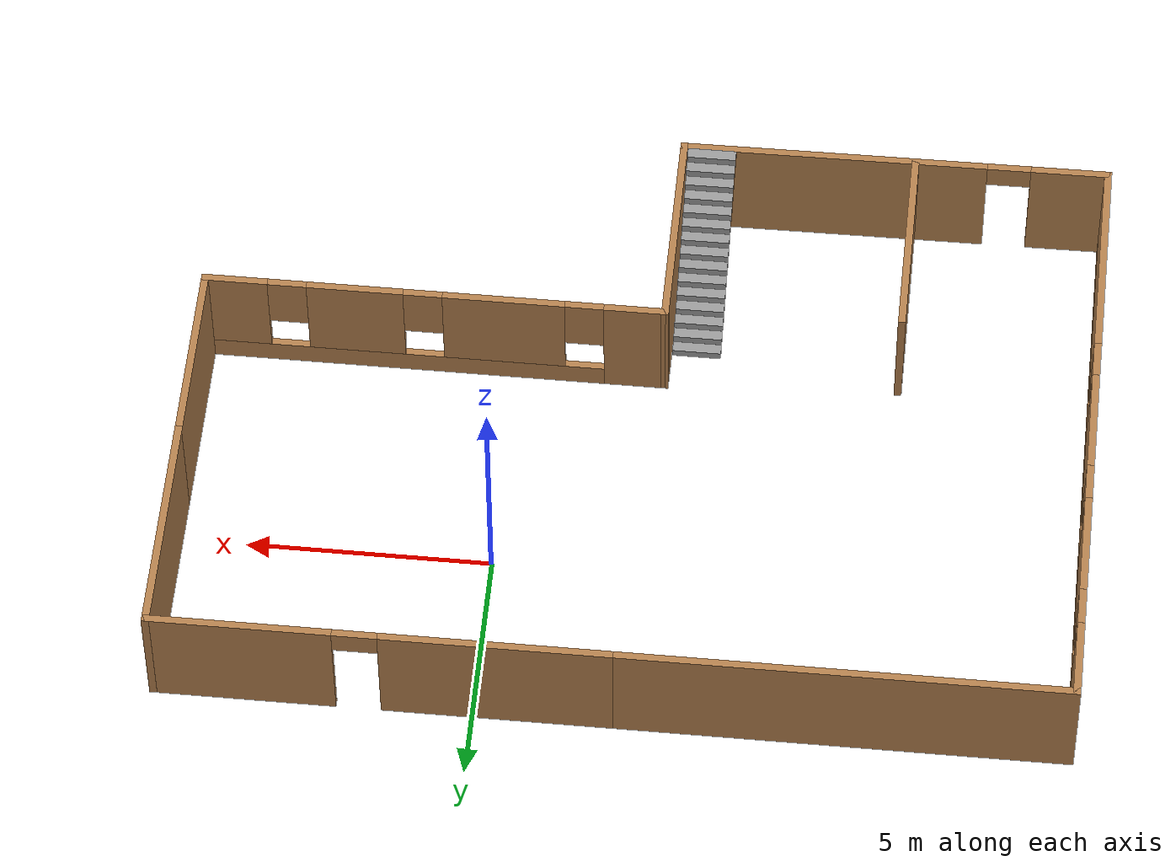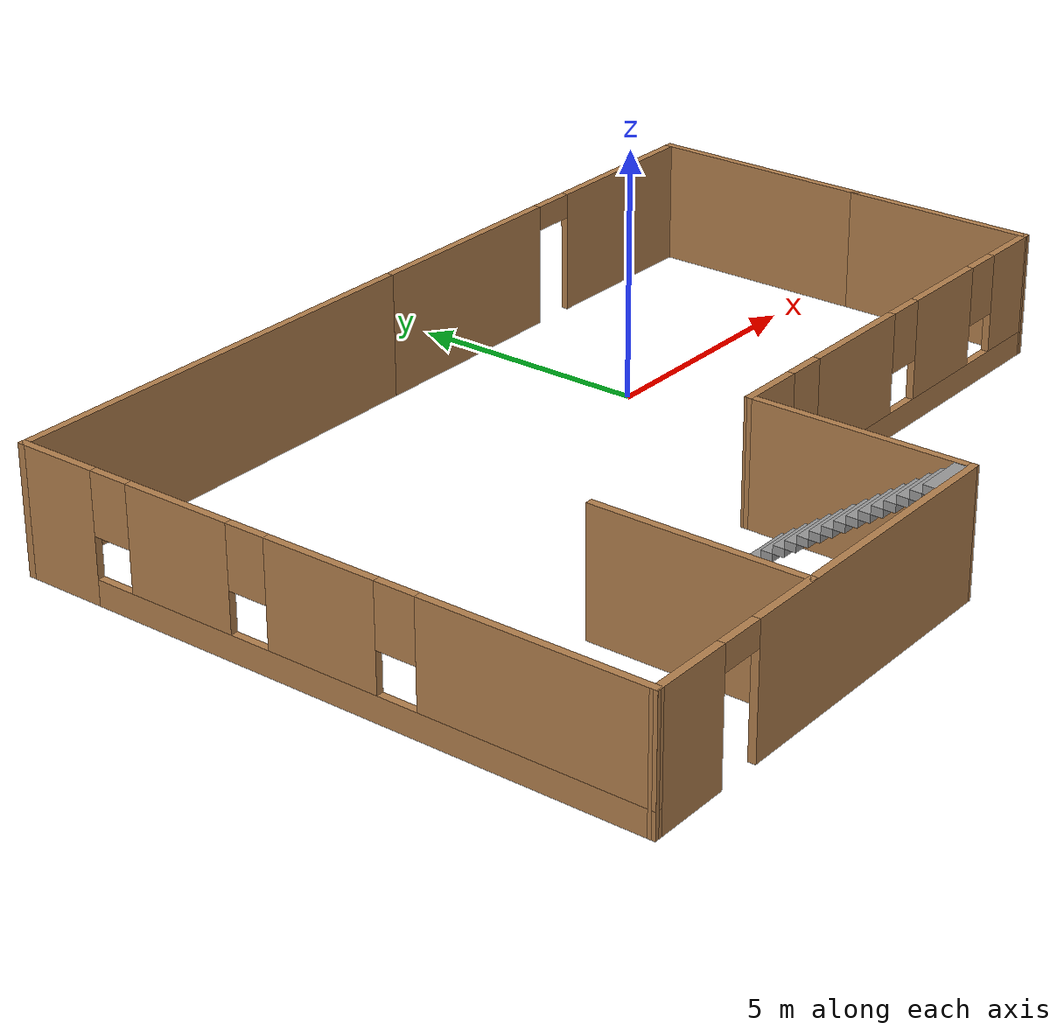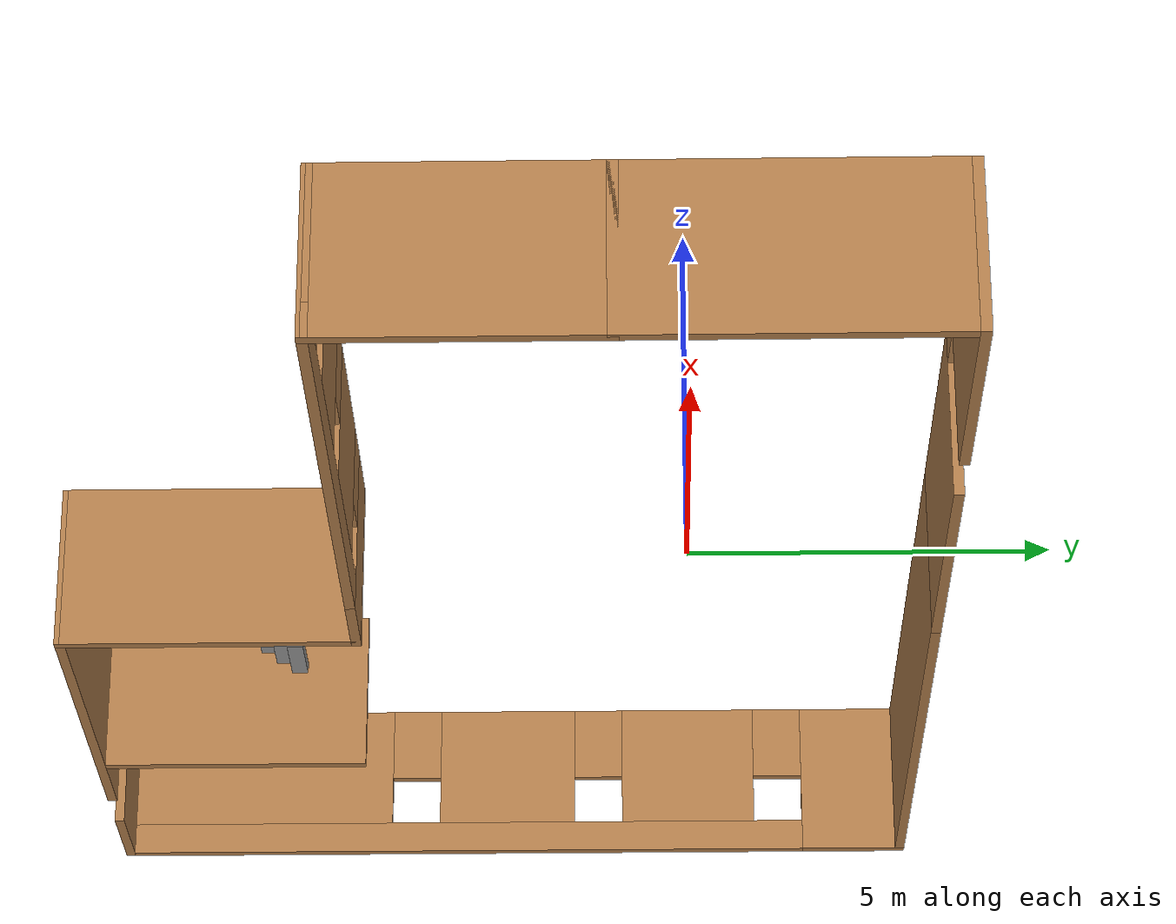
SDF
<?xml version='1.0'?>
<sdf version='1.6'>
  <model name='turtlebot_house'>
    <pose frame=''>-2.74021 -2.79523 0 0 -0 0</pose>
    <link name='Stairs_0'>
      <visual name='Stairs_0_Visual_0'>
        <pose frame=''>-0.902791 -2.92827 0.083333 0 -0 0</pose>
        <geometry>
          <box>
            <size>1 0.233333 0.166667</size>
          </box>
        </geometry>
        <material>
          <script>
            <uri>file://media/materials/scripts/gazebo.material</uri>
            <name>Gazebo/Grey</name>
          </script>
          <ambient>1 1 1 1</ambient>
        </material>
      </visual>
      <collision name='Stairs_0_Collision_0'>
        <geometry>
          <box>
            <size>1 0.233333 0.166667</size>
          </box>
        </geometry>
        <pose frame=''>-0.902791 -2.92827 0.083333 0 -0 0</pose>
      </collision>
      <visual name='Stairs_0_Visual_1'>
        <pose frame=''>-0.902791 -3.1616 0.25 0 -0 0</pose>
        <geometry>
          <box>
            <size>1 0.233333 0.166667</size>
          </box>
        </geometry>
        <material>
          <script>
            <uri>file://media/materials/scripts/gazebo.material</uri>
            <name>Gazebo/Grey</name>
          </script>
          <ambient>1 1 1 1</ambient>
        </material>
      </visual>
      <collision name='Stairs_0_Collision_1'>
        <geometry>
          <box>
            <size>1 0.233333 0.166667</size>
          </box>
        </geometry>
        <pose frame=''>-0.902791 -3.1616 0.25 0 -0 0</pose>
      </collision>
      <visual name='Stairs_0_Visual_2'>
        <pose frame=''>-0.902791 -3.39493 0.416667 0 -0 0</pose>
        <geometry>
          <box>
            <size>1 0.233333 0.166667</size>
          </box>
        </geometry>
        <material>
          <script>
            <uri>file://media/materials/scripts/gazebo.material</uri>
            <name>Gazebo/Grey</name>
          </script>
          <ambient>1 1 1 1</ambient>
        </material>
      </visual>
      <collision name='Stairs_0_Collision_2'>
        <geometry>
          <box>
            <size>1 0.233333 0.166667</size>
          </box>
        </geometry>
        <pose frame=''>-0.902791 -3.39493 0.416667 0 -0 0</pose>
      </collision>
      <visual name='Stairs_0_Visual_3'>
        <pose frame=''>-0.902791 -3.62826 0.583333 0 -0 0</pose>
        <geometry>
          <box>
            <size>1 0.233333 0.166667</size>
          </box>
        </geometry>
        <material>
          <script>
            <uri>file://media/materials/scripts/gazebo.material</uri>
            <name>Gazebo/Grey</name>
          </script>
          <ambient>1 1 1 1</ambient>
        </material>
      </visual>
      <collision name='Stairs_0_Collision_3'>
        <geometry>
          <box>
            <size>1 0.233333 0.166667</size>
          </box>
        </geometry>
        <pose frame=''>-0.902791 -3.62826 0.583333 0 -0 0</pose>
      </collision>
      <visual name='Stairs_0_Visual_4'>
        <pose frame=''>-0.902791 -3.8616 0.75 0 -0 0</pose>
        <geometry>
          <box>
            <size>1 0.233333 0.166667</size>
          </box>
        </geometry>
        <material>
          <script>
            <uri>file://media/materials/scripts/gazebo.material</uri>
            <name>Gazebo/Grey</name>
          </script>
          <ambient>1 1 1 1</ambient>
        </material>
      </visual>
      <collision name='Stairs_0_Collision_4'>
        <geometry>
          <box>
            <size>1 0.233333 0.166667</size>
          </box>
        </geometry>
        <pose frame=''>-0.902791 -3.8616 0.75 0 -0 0</pose>
      </collision>
      <visual name='Stairs_0_Visual_5'>
        <pose frame=''>-0.902791 -4.09493 0.916667 0 -0 0</pose>
        <geometry>
          <box>
            <size>1 0.233333 0.166667</size>
          </box>
        </geometry>
        <material>
          <script>
            <uri>file://media/materials/scripts/gazebo.material</uri>
            <name>Gazebo/Grey</name>
          </script>
          <ambient>1 1 1 1</ambient>
        </material>
      </visual>
      <collision name='Stairs_0_Collision_5'>
        <geometry>
          <box>
            <size>1 0.233333 0.166667</size>
          </box>
        </geometry>
        <pose frame=''>-0.902791 -4.09493 0.916667 0 -0 0</pose>
      </collision>
      <visual name='Stairs_0_Visual_6'>
        <pose frame=''>-0.902791 -4.32827 1.08333 0 -0 0</pose>
        <geometry>
          <box>
            <size>1 0.233333 0.166667</size>
          </box>
        </geometry>
        <material>
          <script>
            <uri>file://media/materials/scripts/gazebo.material</uri>
            <name>Gazebo/Grey</name>
          </script>
          <ambient>1 1 1 1</ambient>
        </material>
      </visual>
      <collision name='Stairs_0_Collision_6'>
        <geometry>
          <box>
            <size>1 0.233333 0.166667</size>
          </box>
        </geometry>
        <pose frame=''>-0.902791 -4.32827 1.08333 0 -0 0</pose>
      </collision>
      <visual name='Stairs_0_Visual_7'>
        <pose frame=''>-0.902791 -4.5616 1.25 0 -0 0</pose>
        <geometry>
          <box>
            <size>1 0.233333 0.166667</size>
          </box>
        </geometry>
        <material>
          <script>
            <uri>file://media/materials/scripts/gazebo.material</uri>
            <name>Gazebo/Grey</name>
          </script>
          <ambient>1 1 1 1</ambient>
        </material>
      </visual>
      <collision name='Stairs_0_Collision_7'>
        <geometry>
          <box>
            <size>1 0.233333 0.166667</size>
          </box>
        </geometry>
        <pose frame=''>-0.902791 -4.5616 1.25 0 -0 0</pose>
      </collision>
      <visual name='Stairs_0_Visual_8'>
        <pose frame=''>-0.902791 -4.79493 1.41667 0 -0 0</pose>
        <geometry>
          <box>
            <size>1 0.233333 0.166667</size>
          </box>
        </geometry>
        <material>
          <script>
            <uri>file://media/materials/scripts/gazebo.material</uri>
            <name>Gazebo/Grey</name>
          </script>
          <ambient>1 1 1 1</ambient>
        </material>
      </visual>
      <collision name='Stairs_0_Collision_8'>
        <geometry>
          <box>
            <size>1 0.233333 0.166667</size>
          </box>
        </geometry>
        <pose frame=''>-0.902791 -4.79493 1.41667 0 -0 0</pose>
      </collision>
      <visual name='Stairs_0_Visual_9'>
        <pose frame=''>-0.902791 -5.02827 1.58333 0 -0 0</pose>
        <geometry>
          <box>
            <size>1 0.233333 0.166667</size>
          </box>
        </geometry>
        <material>
          <script>
            <uri>file://media/materials/scripts/gazebo.material</uri>
            <name>Gazebo/Grey</name>
          </script>
          <ambient>1 1 1 1</ambient>
        </material>
      </visual>
      <collision name='Stairs_0_Collision_9'>
        <geometry>
          <box>
            <size>1 0.233333 0.166667</size>
          </box>
        </geometry>
        <pose frame=''>-0.902791 -5.02827 1.58333 0 -0 0</pose>
      </collision>
      <visual name='Stairs_0_Visual_10'>
        <pose frame=''>-0.902791 -5.2616 1.75 0 -0 0</pose>
        <geometry>
          <box>
            <size>1 0.233333 0.166667</size>
          </box>
        </geometry>
        <material>
          <script>
            <uri>file://media/materials/scripts/gazebo.material</uri>
            <name>Gazebo/Grey</name>
          </script>
          <ambient>1 1 1 1</ambient>
        </material>
      </visual>
      <collision name='Stairs_0_Collision_10'>
        <geometry>
          <box>
            <size>1 0.233333 0.166667</size>
          </box>
        </geometry>
        <pose frame=''>-0.902791 -5.2616 1.75 0 -0 0</pose>
      </collision>
      <visual name='Stairs_0_Visual_11'>
        <pose frame=''>-0.902791 -5.49493 1.91667 0 -0 0</pose>
        <geometry>
          <box>
            <size>1 0.233333 0.166667</size>
          </box>
        </geometry>
        <material>
          <script>
            <uri>file://media/materials/scripts/gazebo.material</uri>
            <name>Gazebo/Grey</name>
          </script>
          <ambient>1 1 1 1</ambient>
        </material>
      </visual>
      <collision name='Stairs_0_Collision_11'>
        <geometry>
          <box>
            <size>1 0.233333 0.166667</size>
          </box>
        </geometry>
        <pose frame=''>-0.902791 -5.49493 1.91667 0 -0 0</pose>
      </collision>
      <visual name='Stairs_0_Visual_12'>
        <pose frame=''>-0.902791 -5.72827 2.08333 0 -0 0</pose>
        <geometry>
          <box>
            <size>1 0.233333 0.166667</size>
          </box>
        </geometry>
        <material>
          <script>
            <uri>file://media/materials/scripts/gazebo.material</uri>
            <name>Gazebo/Grey</name>
          </script>
          <ambient>1 1 1 1</ambient>
        </material>
      </visual>
      <collision name='Stairs_0_Collision_12'>
        <geometry>
          <box>
            <size>1 0.233333 0.166667</size>
          </box>
        </geometry>
        <pose frame=''>-0.902791 -5.72827 2.08333 0 -0 0</pose>
      </collision>
      <visual name='Stairs_0_Visual_13'>
        <pose frame=''>-0.902791 -5.9616 2.25 0 -0 0</pose>
        <geometry>
          <box>
            <size>1 0.233333 0.166667</size>
          </box>
        </geometry>
        <material>
          <script>
            <uri>file://media/materials/scripts/gazebo.material</uri>
            <name>Gazebo/Grey</name>
          </script>
          <ambient>1 1 1 1</ambient>
        </material>
      </visual>
      <collision name='Stairs_0_Collision_13'>
        <geometry>
          <box>
            <size>1 0.233333 0.166667</size>
          </box>
        </geometry>
        <pose frame=''>-0.902791 -5.9616 2.25 0 -0 0</pose>
      </collision>
      <visual name='Stairs_0_Visual_14'>
        <pose frame=''>-0.902791 -6.19493 2.41667 0 -0 0</pose>
        <geometry>
          <box>
            <size>1 0.233333 0.166667</size>
          </box>
        </geometry>
        <material>
          <script>
            <uri>file://media/materials/scripts/gazebo.material</uri>
            <name>Gazebo/Grey</name>
          </script>
          <ambient>1 1 1 1</ambient>
        </material>
      </visual>
      <collision name='Stairs_0_Collision_14'>
        <geometry>
          <box>
            <size>1 0.233333 0.166667</size>
          </box>
        </geometry>
        <pose frame=''>-0.902791 -6.19493 2.41667 0 -0 0</pose>
      </collision>
    </link>
    <link name='Wall_1'>
      <collision name='Wall_1_Collision'>
        <geometry>
          <box>
            <size>4 0.15 2.5</size>
          </box>
        </geometry>
        <pose frame=''>0 0 1.25 0 -0 0</pose>
      </collision>
      <visual name='Wall_1_Visual'>
        <pose frame=''>0 0 1.25 0 -0 0</pose>
        <geometry>
          <box>
            <size>4 0.15 2.5</size>
          </box>
        </geometry>
        <material>
          <script>
            <uri>file://media/materials/scripts/gazebo.material</uri>
            <name>Gazebo/Wood</name>
          </script>
          <ambient>1 1 1 1</ambient>
        </material>
      </visual>
      <pose frame=''>9.10021 -0.09977 0 0 0 -1.5708</pose>
    </link>
    <link name='Wall_11'>
      <collision name='Wall_11_Collision'>
        <geometry>
          <box>
            <size>9.25 0.15 2.5</size>
          </box>
        </geometry>
        <pose frame=''>0 0 1.25 0 -0 0</pose>
      </collision>
      <visual name='Wall_11_Visual'>
        <pose frame=''>0 0 1.25 0 -0 0</pose>
        <geometry>
          <box>
            <size>9.25 0.15 2.5</size>
          </box>
        </geometry>
        <material>
          <script>
            <uri>file://media/materials/scripts/gazebo.material</uri>
            <name>Gazebo/Wood</name>
          </script>
          <ambient>1 1 1 1</ambient>
        </material>
      </visual>
      <pose frame=''>-4.54979 6.42523 0 0 -0 3.14159</pose>
    </link>
    <link name='Wall_13'>
      <pose frame=''>-9.09979 0.00023 0 0 0 -1.5708</pose>
      <visual name='Wall_13_Visual_0'>
        <pose frame=''>-5.65635 0 1.25 0 -0 0</pose>
        <geometry>
          <box>
            <size>1.68731 0.15 2.5</size>
          </box>
        </geometry>
        <material>
          <script>
            <uri>file://media/materials/scripts/gazebo.material</uri>
            <name>Gazebo/Wood</name>
          </script>
          <ambient>1 1 1 1</ambient>
        </material>
      </visual>
      <collision name='Wall_13_Collision_0'>
        <geometry>
          <box>
            <size>1.68731 0.15 2.5</size>
          </box>
        </geometry>
        <pose frame=''>-5.65635 0 1.25 0 -0 0</pose>
      </collision>
      <visual name='Wall_13_Visual_1'>
        <pose frame=''>0.843653 0 0.25 0 -0 0</pose>
        <geometry>
          <box>
            <size>11.3127 0.15 0.5</size>
          </box>
        </geometry>
        <material>
          <script>
            <uri>file://media/materials/scripts/gazebo.material</uri>
            <name>Gazebo/Wood</name>
          </script>
          <ambient>1 1 1 1</ambient>
        </material>
      </visual>
      <collision name='Wall_13_Collision_1'>
        <geometry>
          <box>
            <size>11.3127 0.15 0.5</size>
          </box>
        </geometry>
        <pose frame=''>0.843653 0 0.25 0 -0 0</pose>
      </collision>
      <visual name='Wall_13_Visual_2'>
        <pose frame=''>-2.90968 0 1.5 0 -0 0</pose>
        <geometry>
          <box>
            <size>2.20602 0.15 2</size>
          </box>
        </geometry>
        <material>
          <script>
            <uri>file://media/materials/scripts/gazebo.material</uri>
            <name>Gazebo/Wood</name>
          </script>
          <ambient>1 1 1 1</ambient>
        </material>
      </visual>
      <collision name='Wall_13_Collision_2'>
        <geometry>
          <box>
            <size>2.20602 0.15 2</size>
          </box>
        </geometry>
        <pose frame=''>-2.90968 0 1.5 0 -0 0</pose>
      </collision>
      <visual name='Wall_13_Visual_3'>
        <pose frame=''>0.119946 0 1.5 0 -0 0</pose>
        <geometry>
          <box>
            <size>2.25324 0.15 2</size>
          </box>
        </geometry>
        <material>
          <script>
            <uri>file://media/materials/scripts/gazebo.material</uri>
            <name>Gazebo/Wood</name>
          </script>
          <ambient>1 1 1 1</ambient>
        </material>
      </visual>
      <collision name='Wall_13_Collision_3'>
        <geometry>
          <box>
            <size>2.25324 0.15 2</size>
          </box>
        </geometry>
        <pose frame=''>0.119946 0 1.5 0 -0 0</pose>
      </collision>
      <visual name='Wall_13_Visual_4'>
        <pose frame=''>4.27328 0 1.5 0 -0 0</pose>
        <geometry>
          <box>
            <size>4.45343 0.15 2</size>
          </box>
        </geometry>
        <material>
          <script>
            <uri>file://media/materials/scripts/gazebo.material</uri>
            <name>Gazebo/Wood</name>
          </script>
          <ambient>1 1 1 1</ambient>
        </material>
      </visual>
      <collision name='Wall_13_Collision_4'>
        <geometry>
          <box>
            <size>4.45343 0.15 2</size>
          </box>
        </geometry>
        <pose frame=''>4.27328 0 1.5 0 -0 0</pose>
      </collision>
      <visual name='Wall_13_Visual_5'>
        <pose frame=''>-4.41269 0 1.9 0 -0 0</pose>
        <geometry>
          <box>
            <size>0.8 0.15 1.2</size>
          </box>
        </geometry>
        <material>
          <script>
            <uri>file://media/materials/scripts/gazebo.material</uri>
            <name>Gazebo/Wood</name>
          </script>
          <ambient>1 1 1 1</ambient>
        </material>
      </visual>
      <collision name='Wall_13_Collision_5'>
        <geometry>
          <box>
            <size>0.8 0.15 1.2</size>
          </box>
        </geometry>
        <pose frame=''>-4.41269 0 1.9 0 -0 0</pose>
      </collision>
      <visual name='Wall_13_Visual_6'>
        <pose frame=''>-1.40667 0 1.9 0 -0 0</pose>
        <geometry>
          <box>
            <size>0.8 0.15 1.2</size>
          </box>
        </geometry>
        <material>
          <script>
            <uri>file://media/materials/scripts/gazebo.material</uri>
            <name>Gazebo/Wood</name>
          </script>
          <ambient>1 1 1 1</ambient>
        </material>
      </visual>
      <collision name='Wall_13_Collision_6'>
        <geometry>
          <box>
            <size>0.8 0.15 1.2</size>
          </box>
        </geometry>
        <pose frame=''>-1.40667 0 1.9 0 -0 0</pose>
      </collision>
      <visual name='Wall_13_Visual_7'>
        <pose frame=''>1.64657 0 1.9 0 -0 0</pose>
        <geometry>
          <box>
            <size>0.8 0.15 1.2</size>
          </box>
        </geometry>
        <material>
          <script>
            <uri>file://media/materials/scripts/gazebo.material</uri>
            <name>Gazebo/Wood</name>
          </script>
          <ambient>1 1 1 1</ambient>
        </material>
      </visual>
      <collision name='Wall_13_Collision_7'>
        <geometry>
          <box>
            <size>0.8 0.15 1.2</size>
          </box>
        </geometry>
        <pose frame=''>1.64657 0 1.9 0 -0 0</pose>
      </collision>
    </link>
    <link name='Wall_14'>
      <pose frame=''>-4.70749 -6.39768 0 0 -0 0.006168</pose>
      <visual name='Wall_14_Visual_0'>
        <pose frame=''>-3.63242 0 1.25 0 -0 0</pose>
        <geometry>
          <box>
            <size>1.66992 0.15 2.5</size>
          </box>
        </geometry>
        <material>
          <script>
            <uri>file://media/materials/scripts/gazebo.material</uri>
            <name>Gazebo/Wood</name>
          </script>
          <ambient>0.996078 0.47451 0.0196078 1</ambient>
        </material>
      </visual>
      <collision name='Wall_14_Collision_0'>
        <geometry>
          <box>
            <size>1.66992 0.15 2.5</size>
          </box>
        </geometry>
        <pose frame=''>-3.63242 0 1.25 0 -0 0</pose>
      </collision>
      <visual name='Wall_14_Visual_1'>
        <pose frame=''>1.28496 0 1.25 0 -0 0</pose>
        <geometry>
          <box>
            <size>6.36484 0.15 2.5</size>
          </box>
        </geometry>
        <material>
          <script>
            <uri>file://media/materials/scripts/gazebo.material</uri>
            <name>Gazebo/Wood</name>
          </script>
          <ambient>0.996078 0.47451 0.0196078 1</ambient>
        </material>
      </visual>
      <collision name='Wall_14_Collision_1'>
        <geometry>
          <box>
            <size>6.36484 0.15 2.5</size>
          </box>
        </geometry>
        <pose frame=''>1.28496 0 1.25 0 -0 0</pose>
      </collision>
      <visual name='Wall_14_Visual_2'>
        <pose frame=''>-2.34746 0 2.25 0 -0 0</pose>
        <geometry>
          <box>
            <size>0.9 0.15 0.5</size>
          </box>
        </geometry>
        <material>
          <script>
            <uri>file://media/materials/scripts/gazebo.material</uri>
            <name>Gazebo/Wood</name>
          </script>
          <ambient>0.996078 0.47451 0.0196078 1</ambient>
        </material>
      </visual>
      <collision name='Wall_14_Collision_2'>
        <geometry>
          <box>
            <size>0.9 0.15 0.5</size>
          </box>
        </geometry>
        <pose frame=''>-2.34746 0 2.25 0 -0 0</pose>
      </collision>
    </link>
    <link name='Wall_24'>
      <collision name='Wall_24_Collision'>
        <geometry>
          <box>
            <size>4.25 0.15 2.5</size>
          </box>
        </geometry>
        <pose frame=''>0 0 1.25 0 -0 0</pose>
      </collision>
      <visual name='Wall_24_Visual'>
        <pose frame=''>0 0 1.25 0 -0 0</pose>
        <geometry>
          <box>
            <size>4.25 0.15 2.5</size>
          </box>
        </geometry>
        <material>
          <script>
            <uri>file://media/materials/scripts/gazebo.material</uri>
            <name>Gazebo/Wood</name>
          </script>
          <ambient>0.996078 0.47451 0.0196078 1</ambient>
        </material>
      </visual>
      <pose frame=''>-5.11542 -4.33407 0 0 0 -1.5708</pose>
    </link>
    <link name='Wall_3'>
      <collision name='Wall_3_Collision'>
        <geometry>
          <box>
            <size>4.75 0.15 2.5</size>
          </box>
        </geometry>
        <pose frame=''>0 0 1.25 0 -0 0</pose>
      </collision>
      <visual name='Wall_3_Visual'>
        <pose frame=''>0 0 1.25 0 -0 0</pose>
        <geometry>
          <box>
            <size>4.75 0.15 2.5</size>
          </box>
        </geometry>
        <material>
          <script>
            <uri>file://media/materials/scripts/gazebo.material</uri>
            <name>Gazebo/Wood</name>
          </script>
          <ambient>1 1 1 1</ambient>
        </material>
      </visual>
      <pose frame=''>9.10021 4.12523 0 0 -0 1.5708</pose>
    </link>
    <link name='Wall_4'>
      <pose frame=''>4.55021 6.42523 0 0 -0 3.14159</pose>
      <visual name='Wall_4_Visual_0'>
        <pose frame=''>-2.75945 0 1.25 0 -0 0</pose>
        <geometry>
          <box>
            <size>3.73111 0.15 2.5</size>
          </box>
        </geometry>
        <material>
          <script>
            <uri>file://media/materials/scripts/gazebo.material</uri>
            <name>Gazebo/Wood</name>
          </script>
          <ambient>1 1 1 1</ambient>
        </material>
      </visual>
      <collision name='Wall_4_Collision_0'>
        <geometry>
          <box>
            <size>3.73111 0.15 2.5</size>
          </box>
        </geometry>
        <pose frame=''>-2.75945 0 1.25 0 -0 0</pose>
      </collision>
      <visual name='Wall_4_Visual_1'>
        <pose frame=''>2.31555 0 1.25 0 -0 0</pose>
        <geometry>
          <box>
            <size>4.61889 0.15 2.5</size>
          </box>
        </geometry>
        <material>
          <script>
            <uri>file://media/materials/scripts/gazebo.material</uri>
            <name>Gazebo/Wood</name>
          </script>
          <ambient>1 1 1 1</ambient>
        </material>
      </visual>
      <collision name='Wall_4_Collision_1'>
        <geometry>
          <box>
            <size>4.61889 0.15 2.5</size>
          </box>
        </geometry>
        <pose frame=''>2.31555 0 1.25 0 -0 0</pose>
      </collision>
      <visual name='Wall_4_Visual_2'>
        <pose frame=''>-0.443892 0 2.25 0 -0 0</pose>
        <geometry>
          <box>
            <size>0.9 0.15 0.5</size>
          </box>
        </geometry>
        <material>
          <script>
            <uri>file://media/materials/scripts/gazebo.material</uri>
            <name>Gazebo/Wood</name>
          </script>
          <ambient>1 1 1 1</ambient>
        </material>
      </visual>
      <collision name='Wall_4_Collision_2'>
        <geometry>
          <box>
            <size>0.9 0.15 0.5</size>
          </box>
        </geometry>
        <pose frame=''>-0.443892 0 2.25 0 -0 0</pose>
      </collision>
    </link>
    <link name='Wall_7'>
      <pose frame=''>4.39251 -2.02268 0 0 0 -0.000445</pose>
      <visual name='Wall_7_Visual_0'>
        <pose frame=''>-4.12058 0 1.25 0 -0 0</pose>
        <geometry>
          <box>
            <size>1.32424 0.15 2.5</size>
          </box>
        </geometry>
        <material>
          <script>
            <uri>file://media/materials/scripts/gazebo.material</uri>
            <name>Gazebo/Wood</name>
          </script>
          <ambient>1 1 1 1</ambient>
        </material>
      </visual>
      <collision name='Wall_7_Collision_0'>
        <geometry>
          <box>
            <size>1.32424 0.15 2.5</size>
          </box>
        </geometry>
        <pose frame=''>-4.12058 0 1.25 0 -0 0</pose>
      </collision>
      <visual name='Wall_7_Visual_1'>
        <pose frame=''>0.662117 0 0.25 0 -0 0</pose>
        <geometry>
          <box>
            <size>8.24117 0.15 0.5</size>
          </box>
        </geometry>
        <material>
          <script>
            <uri>file://media/materials/scripts/gazebo.material</uri>
            <name>Gazebo/Wood</name>
          </script>
          <ambient>1 1 1 1</ambient>
        </material>
      </visual>
      <collision name='Wall_7_Collision_1'>
        <geometry>
          <box>
            <size>8.24117 0.15 0.5</size>
          </box>
        </geometry>
        <pose frame=''>0.662117 0 0.25 0 -0 0</pose>
      </collision>
      <visual name='Wall_7_Visual_2'>
        <pose frame=''>-1.40655 0 1.5 0 -0 0</pose>
        <geometry>
          <box>
            <size>2.50384 0.15 2</size>
          </box>
        </geometry>
        <material>
          <script>
            <uri>file://media/materials/scripts/gazebo.material</uri>
            <name>Gazebo/Wood</name>
          </script>
          <ambient>1 1 1 1</ambient>
        </material>
      </visual>
      <collision name='Wall_7_Collision_2'>
        <geometry>
          <box>
            <size>2.50384 0.15 2</size>
          </box>
        </geometry>
        <pose frame=''>-1.40655 0 1.5 0 -0 0</pose>
      </collision>
      <visual name='Wall_7_Visual_3'>
        <pose frame=''>1.63725 0 1.5 0 -0 0</pose>
        <geometry>
          <box>
            <size>1.98375 0.15 2</size>
          </box>
        </geometry>
        <material>
          <script>
            <uri>file://media/materials/scripts/gazebo.material</uri>
            <name>Gazebo/Wood</name>
          </script>
          <ambient>1 1 1 1</ambient>
        </material>
      </visual>
      <collision name='Wall_7_Collision_3'>
        <geometry>
          <box>
            <size>1.98375 0.15 2</size>
          </box>
        </geometry>
        <pose frame=''>1.63725 0 1.5 0 -0 0</pose>
      </collision>
      <visual name='Wall_7_Visual_4'>
        <pose frame=''>4.10591 0 1.5 0 -0 0</pose>
        <geometry>
          <box>
            <size>1.35358 0.15 2</size>
          </box>
        </geometry>
        <material>
          <script>
            <uri>file://media/materials/scripts/gazebo.material</uri>
            <name>Gazebo/Wood</name>
          </script>
          <ambient>1 1 1 1</ambient>
        </material>
      </visual>
      <collision name='Wall_7_Collision_4'>
        <geometry>
          <box>
            <size>1.35358 0.15 2</size>
          </box>
        </geometry>
        <pose frame=''>4.10591 0 1.5 0 -0 0</pose>
      </collision>
      <visual name='Wall_7_Visual_5'>
        <pose frame=''>-3.05847 0 1.9 0 -0 0</pose>
        <geometry>
          <box>
            <size>0.8 0.15 1.2</size>
          </box>
        </geometry>
        <material>
          <script>
            <uri>file://media/materials/scripts/gazebo.material</uri>
            <name>Gazebo/Wood</name>
          </script>
          <ambient>1 1 1 1</ambient>
        </material>
      </visual>
      <collision name='Wall_7_Collision_5'>
        <geometry>
          <box>
            <size>0.8 0.15 1.2</size>
          </box>
        </geometry>
        <pose frame=''>-3.05847 0 1.9 0 -0 0</pose>
      </collision>
      <visual name='Wall_7_Visual_6'>
        <pose frame=''>0.245373 0 1.9 0 -0 0</pose>
        <geometry>
          <box>
            <size>0.8 0.15 1.2</size>
          </box>
        </geometry>
        <material>
          <script>
            <uri>file://media/materials/scripts/gazebo.material</uri>
            <name>Gazebo/Wood</name>
          </script>
          <ambient>1 1 1 1</ambient>
        </material>
      </visual>
      <collision name='Wall_7_Collision_6'>
        <geometry>
          <box>
            <size>0.8 0.15 1.2</size>
          </box>
        </geometry>
        <pose frame=''>0.245373 0 1.9 0 -0 0</pose>
      </collision>
      <visual name='Wall_7_Visual_7'>
        <pose frame=''>3.02913 0 1.9 0 -0 0</pose>
        <geometry>
          <box>
            <size>0.8 0.15 1.2</size>
          </box>
        </geometry>
        <material>
          <script>
            <uri>file://media/materials/scripts/gazebo.material</uri>
            <name>Gazebo/Wood</name>
          </script>
          <ambient>1 1 1 1</ambient>
        </material>
      </visual>
      <collision name='Wall_7_Collision_7'>
        <geometry>
          <box>
            <size>0.8 0.15 1.2</size>
          </box>
        </geometry>
        <pose frame=''>3.02913 0 1.9 0 -0 0</pose>
      </collision>
    </link>
    <link name='Wall_9'>
      <collision name='Wall_9_Collision'>
        <geometry>
          <box>
            <size>4.5 0.15 2.5</size>
          </box>
        </geometry>
        <pose frame=''>0 0 1.25 0 -0 0</pose>
      </collision>
      <visual name='Wall_9_Visual'>
        <pose frame=''>0 0 1.25 0 -0 0</pose>
        <geometry>
          <box>
            <size>4.5 0.15 2.5</size>
          </box>
        </geometry>
        <material>
          <script>
            <uri>file://media/materials/scripts/gazebo.material</uri>
            <name>Gazebo/Wood</name>
          </script>
          <ambient>0.996078 0.47451 0.0196078 1</ambient>
        </material>
      </visual>
      <pose frame=''>-0.315188 -4.19558 0 0 0 -1.5708</pose>
    </link>
    <static>1</static>
  </model>
</sdf>
